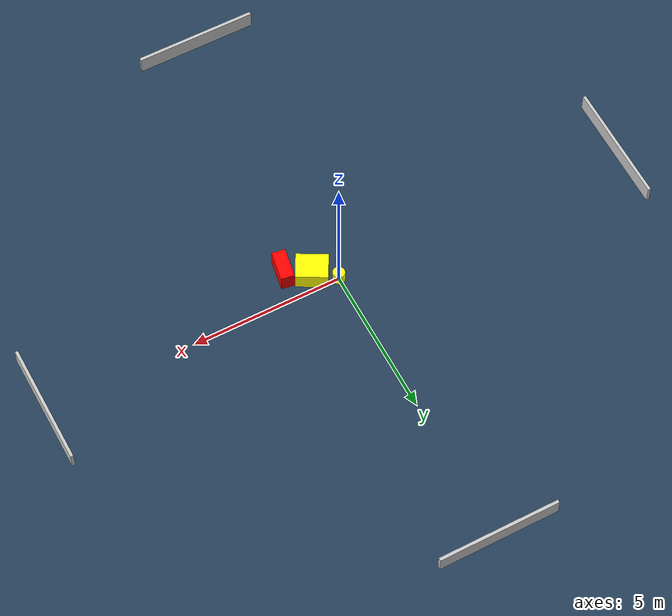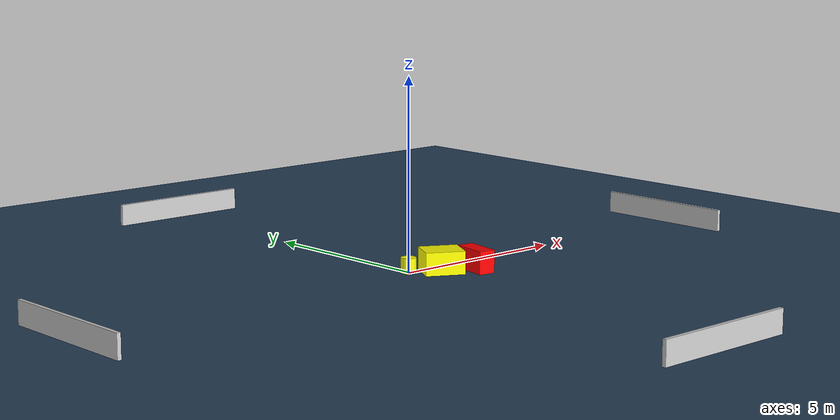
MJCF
<?xml version="1.0" ?>
<mujoco model="generated_environment">
  <option timestep="0.01" integrator="RK4" cone="elliptic"/>
  <default>
    <geom density="1"/>
  </default>
  <asset>
    <texture builtin="gradient" height="3072" name="skybox" rgb1="0.3 0.5 0.7" rgb2="0 0 0" type="skybox" width="512"/>
    <texture builtin="checker" height="300" name="groundplane" rgb1="0.2 0.3 0.4" rgb2="0.1 0.2 0.3" type="2d" width="300"/>
    <material name="groundplane" reflectance="0.2" texrepeat="5 5" texture="groundplane"/>
  </asset>
  <worldbody>
    <light dir="0 0 -1" directional="true" pos="0 0 1.5"/>
    <geom condim="3" friction="0.5 0.005 0.001" material="groundplane" name="floor" pos="0 0 0" size="0 0 0.05" type="plane"/>
    <body name="walls">
      <geom name="wall_1" condim="4" pos="-10.0 0.0 0.3" rgba="0.800000011920929 0.800000011920929 0.800000011920929 1.0" size="0.05 2.0 0.3" type="box"/>
      <geom name="wall_2" condim="4" pos="10.0 0.0 0.3" rgba="0.800000011920929 0.800000011920929 0.800000011920929 1.0" size="0.05 2.0 0.3" type="box"/>
      <geom name="wall_3" condim="4" pos="0.0 -10.0 0.3" rgba="0.800000011920929 0.800000011920929 0.800000011920929 1.0" size="2.0 0.05 0.3" type="box"/>
      <geom name="wall_4" condim="4" pos="0.0 10.0 0.3" rgba="0.800000011920929 0.800000011920929 0.800000011920929 1.0" size="2.0 0.05 0.3" type="box"/>
    </body>
    <body name="robot">
      <joint name="joint_x" type="slide" pos="0 0 0" axis="1 0 0"/>
      <joint name="joint_y" type="slide" pos="0 0 0" axis="0 1 0"/>
      <geom name="robot" type="cylinder" pos="0.0 0.0 0.2" size="0.2 0.2 0.0" mass="5.0" friction="1.0 0.005 0.0001" condim="4" rgba="1.0 1.0 0.0 1.0"/>
    </body>
    <body name="obstacle_1_movable">
      <geom name="obstacle_1_movable" condim="4" pos="0.6794624876339537 -0.500100162861779 0.3" euler="0 0 151.4146325011663" friction="0.0 0.005 0.001" rgba="1.0 1.0 0.0 1.0" size="0.5163898526484526 0.4210018141014502 0.3" type="box" mass="0.1"/>
      <joint type="free"/>
    </body>
    <body name="obstacle_2_static">
      <geom name="obstacle_2_static" condim="4" pos="1.4468445993649335 -0.9589198946091717 0.3" euler="0 0 260.124788748487" friction="0.0 0.005 0.001" rgba="1.0 0.0 0.0 1.0" size="0.4968169389496273 0.2239579096468356 0.3" type="box"/>
    </body>
  </worldbody>
  <actuator>
    <motor name="actuator_x" joint="joint_x" gear="1" ctrlrange="-1 1"/>
    <motor name="actuator_y" joint="joint_y" gear="1" ctrlrange="-1 1"/>
  </actuator>
</mujoco>
